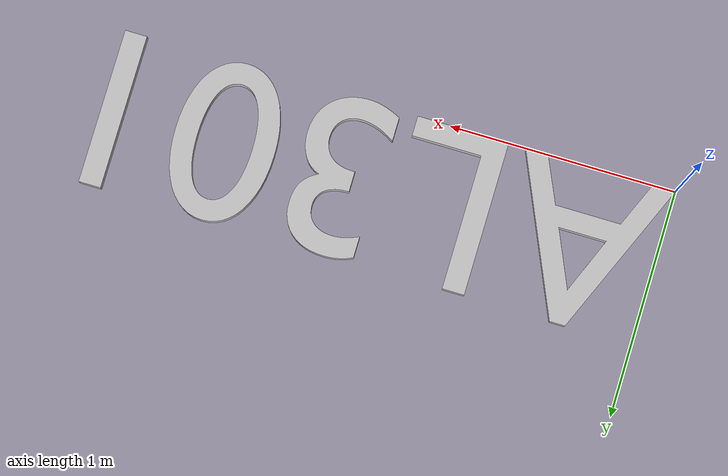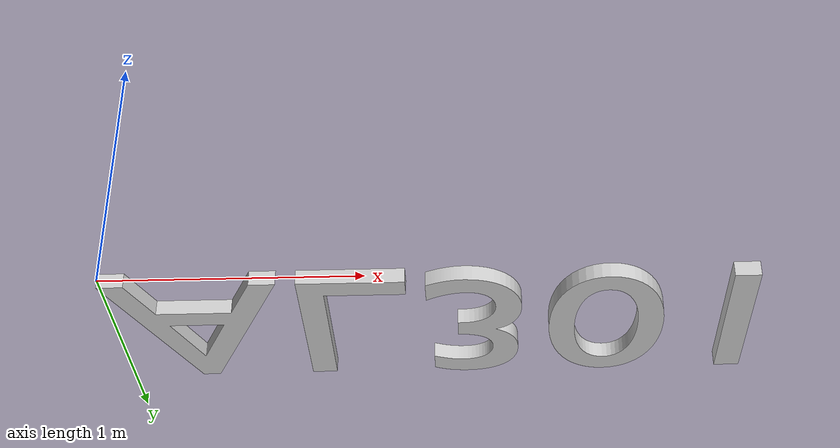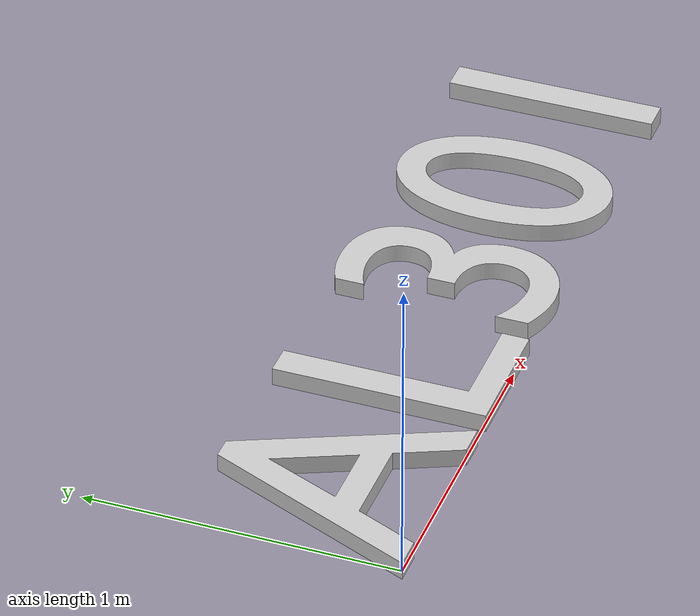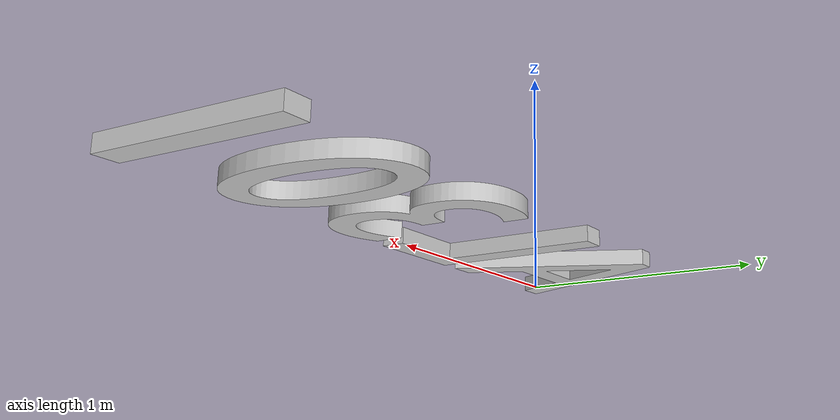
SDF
<?xml version='1.0'?>
    <sdf version='1.6'>
      <model name='AL301'>
        <link name='link'>
          <visual name='visual'>
            <geometry>
              <mesh>
                <uri>model://localros/text_3d_models/AL301/AL301.dae</uri>
              </mesh>
            </geometry>
          </visual>
        </link>
      </model>
    </sdf>
